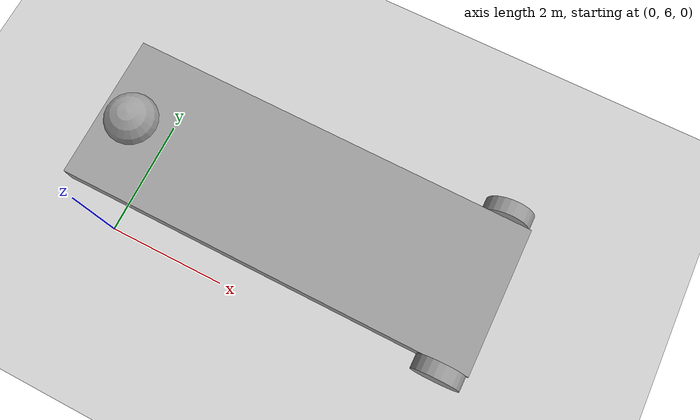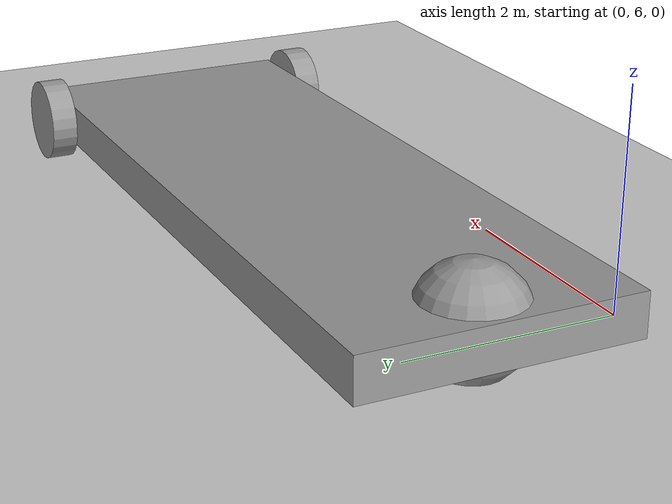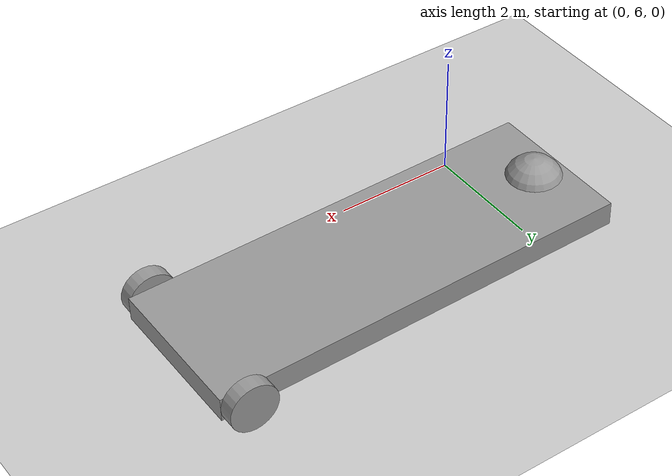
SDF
<sdf version="1.6">
 <world name="default">
  <model name="ground_plane">
   <static>1</static>
   <link name="link">
    <collision name="collision">
     <geometry><plane><normal>0 0 1</normal><size>100 100</size></plane></geometry>
     <surface>
      <contact><collide_bitmask>65535</collide_bitmask></contact>
      <friction><ode><mu>100</mu><mu2>50</mu2></ode></friction>
     </surface>
    </collision>
    <visual name="visual">
     <cast_shadows>0</cast_shadows>
     <geometry><plane><normal>0 0 1</normal><size>100 100</size></plane></geometry>
     <material>
      <script><uri>file://media/materials/scripts/gazebo.material</uri><name>Gazebo/Grey</name></script>
     </material>
    </visual>
   </link>
  </model>
  <model name="Tee-Parking-Plane-Robot_0">
   <link name="link_0">
    <inertial>
     <mass>1</mass>
     <inertia>
      <ixx>0.166667</ixx>
      <ixy>0</ixy>
      <ixz>0</ixz>
      <iyy>0.166667</iyy>
      <iyz>0</iyz>
      <izz>0.166667</izz>
     </inertia>
    </inertial>
    <pose>2.64381 -0.541265 0.5 0 -0 0</pose>
    <visual name="visual">
     <geometry><box><size>7 2.5 0.4</size></box></geometry>
     <material>
      <lighting>1</lighting>
      <script><uri>file://media/materials/scripts/gazebo.material</uri><name>Gazebo/Grey</name></script>
      <shader type="pixel"><normal_map>__default__</normal_map></shader>
      <ambient>0.3 0.3 0.3 1</ambient>
      <diffuse>0.7 0.7 0.7 1</diffuse>
      <specular>0.01 0.01 0.01 1</specular>
      <emissive>0 0 0 1</emissive>
     </material>
    </visual>
    <collision name="collision">
     <geometry><box><size>7 2.5 0.4</size></box></geometry>
     <surface>
      <friction>
       <ode><mu>1</mu><mu2>1</mu2><fdir1>0 0 0</fdir1><slip1>0</slip1><slip2>0</slip2></ode>
       <torsional>
        <coefficient>1</coefficient>
        <patch_radius>0</patch_radius>
        <surface_radius>0</surface_radius>
        <use_patch_radius>1</use_patch_radius>
        <ode><slip>0</slip></ode>
       </torsional>
      </friction>
      <bounce><restitution_coefficient>0</restitution_coefficient><threshold>1e+06</threshold></bounce>
      <contact>
       <collide_without_contact>0</collide_without_contact>
       <collide_without_contact_bitmask>1</collide_without_contact_bitmask>
       <collide_bitmask>1</collide_bitmask>
       <ode>
        <soft_cfm>0</soft_cfm>
        <soft_erp>0.2</soft_erp>
        <kp>1e+13</kp>
        <kd>1</kd>
        <max_vel>0.01</max_vel>
        <min_depth>0</min_depth>
       </ode>
       <bullet>
        <split_impulse>1</split_impulse>
        <split_impulse_penetration_threshold>-0.01</split_impulse_penetration_threshold>
        <soft_cfm>0</soft_cfm>
        <soft_erp>0.2</soft_erp>
        <kp>1e+13</kp>
        <kd>1</kd>
       </bullet>
      </contact>
     </surface>
    </collision>
   </link>
   <link name="link_1_clone">
    <inertial>
     <mass>1</mass>
     <inertia><ixx>0.145833</ixx><ixy>0</ixy><ixz>0</ixz><iyy>0.145833</iyy><iyz>0</iyz><izz>0.125</izz></inertia>
    </inertial>
    <pose>5.74381 -1.9163 0.5 0 -0 0</pose>
    <visual name="visual">
     <pose>0 0 0 1.5707 -0 0</pose>
     <geometry><cylinder><radius>0.4</radius><length>0.25</length></cylinder></geometry>
     <material>
      <lighting>1</lighting>
      <script><uri>file://media/materials/scripts/gazebo.material</uri><name>Gazebo/Grey</name></script>
      <shader type="pixel"><normal_map>__default__</normal_map></shader>
      <ambient>0.3 0.3 0.3 1</ambient>
      <diffuse>0.7 0.7 0.7 1</diffuse>
      <specular>0.01 0.01 0.01 1</specular>
      <emissive>0 0 0 1</emissive>
     </material>
    </visual>
    <collision name="collision">
     <pose>0 0 0 1.5707 -0 0</pose>
     <geometry><cylinder><radius>0.4</radius><length>0.25</length></cylinder></geometry>
     <surface>
      <friction>
       <ode><mu>1</mu><mu2>1</mu2><fdir1>0 0 0</fdir1><slip1>0</slip1><slip2>0</slip2></ode>
       <torsional>
        <coefficient>1</coefficient>
        <patch_radius>0</patch_radius>
        <surface_radius>0</surface_radius>
        <use_patch_radius>1</use_patch_radius>
        <ode><slip>0</slip></ode>
       </torsional>
      </friction>
      <bounce><restitution_coefficient>0</restitution_coefficient><threshold>1e+06</threshold></bounce>
      <contact>
       <collide_without_contact>0</collide_without_contact>
       <collide_without_contact_bitmask>1</collide_without_contact_bitmask>
       <collide_bitmask>1</collide_bitmask>
       <ode>
        <soft_cfm>0</soft_cfm>
        <soft_erp>0.2</soft_erp>
        <kp>1e+13</kp>
        <kd>1</kd>
        <max_vel>0.01</max_vel>
        <min_depth>0</min_depth>
       </ode>
       <bullet>
        <split_impulse>1</split_impulse>
        <split_impulse_penetration_threshold>-0.01</split_impulse_penetration_threshold>
        <soft_cfm>0</soft_cfm>
        <soft_erp>0.2</soft_erp>
        <kp>1e+13</kp>
        <kd>1</kd>
       </bullet>
      </contact>
     </surface>
    </collision>
   </link>
   <link name="link_1_clone_1">
    <inertial>
     <mass>1</mass>
     <inertia><ixx>0.145833</ixx><ixy>0</ixy><ixz>0</ixz><iyy>0.145833</iyy><iyz>0</iyz><izz>0.125</izz></inertia>
    </inertial>
    <pose>5.74381 0.833775 0.5 0 -0 0</pose>
    <visual name="visual">
     <pose>0 0 0 1.5707 -0 0</pose>
     <geometry><cylinder><radius>0.4</radius><length>0.25</length></cylinder></geometry>
     <material>
      <lighting>1</lighting>
      <script><uri>file://media/materials/scripts/gazebo.material</uri><name>Gazebo/Grey</name></script>
      <shader type="pixel"><normal_map>__default__</normal_map></shader>
      <ambient>0.3 0.3 0.3 1</ambient>
      <diffuse>0.7 0.7 0.7 1</diffuse>
      <specular>0.01 0.01 0.01 1</specular>
      <emissive>0 0 0 1</emissive>
     </material>
    </visual>
    <collision name="collision">
     <pose>0 0 0 1.5707 -0 0</pose>
     <geometry><cylinder><radius>0.4</radius><length>0.25</length></cylinder></geometry>
     <surface>
      <friction>
       <ode><mu>1</mu><mu2>1</mu2><fdir1>0 0 0</fdir1><slip1>0</slip1><slip2>0</slip2></ode>
       <torsional>
        <coefficient>1</coefficient>
        <patch_radius>0</patch_radius>
        <surface_radius>0</surface_radius>
        <use_patch_radius>1</use_patch_radius>
        <ode><slip>0</slip></ode>
       </torsional>
      </friction>
      <bounce><restitution_coefficient>0</restitution_coefficient><threshold>1e+06</threshold></bounce>
      <contact>
       <collide_without_contact>0</collide_without_contact>
       <collide_without_contact_bitmask>1</collide_without_contact_bitmask>
       <collide_bitmask>1</collide_bitmask>
       <ode>
        <soft_cfm>0</soft_cfm>
        <soft_erp>0.2</soft_erp>
        <kp>1e+13</kp>
        <kd>1</kd>
        <max_vel>0.01</max_vel>
        <min_depth>0</min_depth>
       </ode>
       <bullet>
        <split_impulse>1</split_impulse>
        <split_impulse_penetration_threshold>-0.01</split_impulse_penetration_threshold>
        <soft_cfm>0</soft_cfm>
        <soft_erp>0.2</soft_erp>
        <kp>1e+13</kp>
        <kd>1</kd>
       </bullet>
      </contact>
     </surface>
    </collision>
   </link>
   <link name="link_2">
    <inertial>
     <mass>1</mass>
     <inertia><ixx>0.1</ixx><ixy>0</ixy><ixz>0</ixz><iyy>0.1</iyy><iyz>0</iyz><izz>0.1</izz></inertia>
    </inertial>
    <pose>-0.356192 -0.541264 0.5 0 -0 0</pose>
    <visual name="visual">
     <geometry><sphere><radius>0.5</radius></sphere></geometry>
     <material>
      <lighting>1</lighting>
      <script><uri>file://media/materials/scripts/gazebo.material</uri><name>Gazebo/Grey</name></script>
      <shader type="pixel"/>
      <emissive>0 0 0 1</emissive>
     </material>
    </visual>
    <collision name="collision">
     <geometry><sphere><radius>0.5</radius></sphere></geometry>
     <surface>
      <friction>
       <ode><mu>1</mu><mu2>1</mu2><fdir1>0 0 0</fdir1><slip1>0</slip1><slip2>0</slip2></ode>
       <torsional>
        <coefficient>1</coefficient>
        <patch_radius>0</patch_radius>
        <surface_radius>0</surface_radius>
        <use_patch_radius>1</use_patch_radius>
        <ode><slip>0</slip></ode>
       </torsional>
      </friction>
      <bounce><restitution_coefficient>0</restitution_coefficient><threshold>1e+06</threshold></bounce>
      <contact>
       <collide_without_contact>0</collide_without_contact>
       <collide_without_contact_bitmask>1</collide_without_contact_bitmask>
       <collide_bitmask>1</collide_bitmask>
       <ode>
        <soft_cfm>0</soft_cfm>
        <soft_erp>0.2</soft_erp>
        <kp>1e+13</kp>
        <kd>1</kd>
        <max_vel>0.01</max_vel>
        <min_depth>0</min_depth>
       </ode>
       <bullet>
        <split_impulse>1</split_impulse>
        <split_impulse_penetration_threshold>-0.01</split_impulse_penetration_threshold>
        <soft_cfm>0</soft_cfm>
        <soft_erp>0.2</soft_erp>
        <kp>1e+13</kp>
        <kd>1</kd>
       </bullet>
      </contact>
     </surface>
    </collision>
   </link>
   <joint name="link_0_JOINT_1" type="revolute">
    <parent>link_0</parent>
    <child>link_1_clone_1</child>
    <axis>
     <xyz>-0 -1 -0</xyz>
     <use_parent_model_frame>0</use_parent_model_frame>
     <limit>
      <lower>-1.79769e+308</lower>
      <upper>1.79769e+308</upper>
      <effort>-1</effort>
      <velocity>-1</velocity>
     </limit>
     <dynamics>
      <spring_reference>0</spring_reference>
      <spring_stiffness>0</spring_stiffness>
      <damping>0</damping>
      <friction>0</friction>
     </dynamics>
    </axis>
    <physics>
     <ode><limit><cfm>0</cfm><erp>0.2</erp></limit><suspension><cfm>0</cfm><erp>0.2</erp></suspension></ode>
    </physics>
   </joint>
   <joint name="link_0_JOINT_2" type="revolute">
    <parent>link_0</parent>
    <child>link_1_clone</child>
    <axis>
     <xyz>-0 -1 -0</xyz>
     <use_parent_model_frame>0</use_parent_model_frame>
     <limit>
      <lower>-1.79769e+308</lower>
      <upper>1.79769e+308</upper>
      <effort>-1</effort>
      <velocity>-1</velocity>
     </limit>
     <dynamics>
      <spring_reference>0</spring_reference>
      <spring_stiffness>0</spring_stiffness>
      <damping>0</damping>
      <friction>0</friction>
     </dynamics>
    </axis>
    <physics>
     <ode><limit><cfm>0</cfm><erp>0.2</erp></limit><suspension><cfm>0</cfm><erp>0.2</erp></suspension></ode>
    </physics>
   </joint>
   <joint name="link_2_JOINT_3" type="ball">
    <parent>link_0</parent>
    <child>link_2</child>
    <physics>
     <ode><limit><cfm>0</cfm><erp>0.2</erp></limit><suspension><cfm>0</cfm><erp>0.2</erp></suspension></ode>
    </physics>
   </joint>
   <static>0</static>
   <pose>-0.102252 8.20042 -0.005782 -1e-06 0.01639 -0.000544</pose>
  </model>
 </world>
</sdf>
